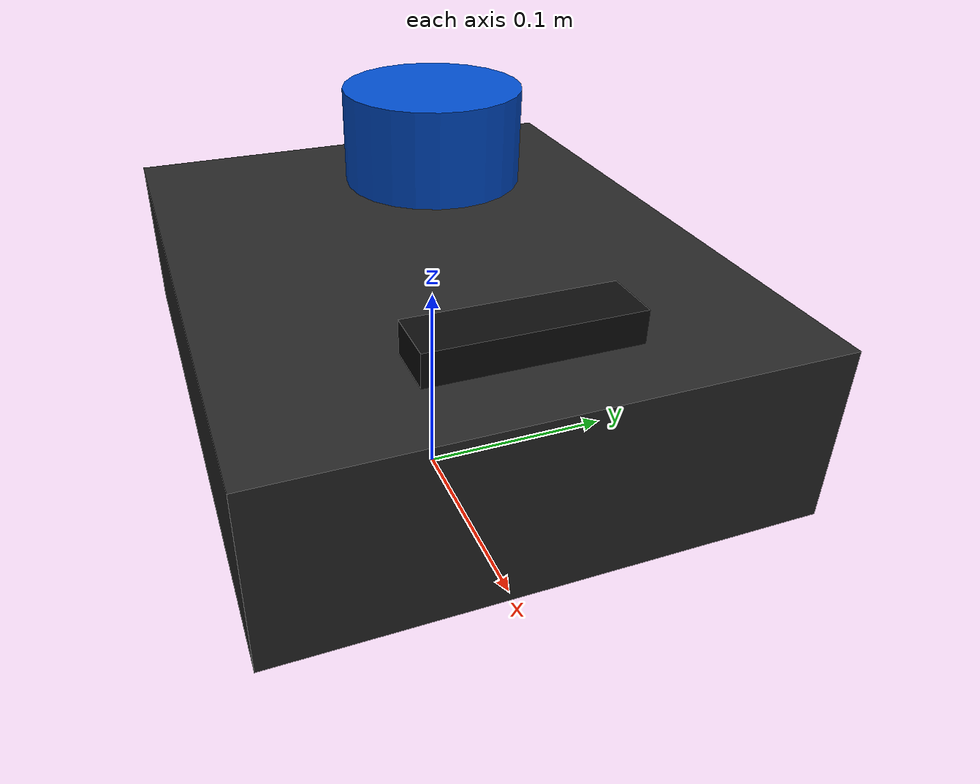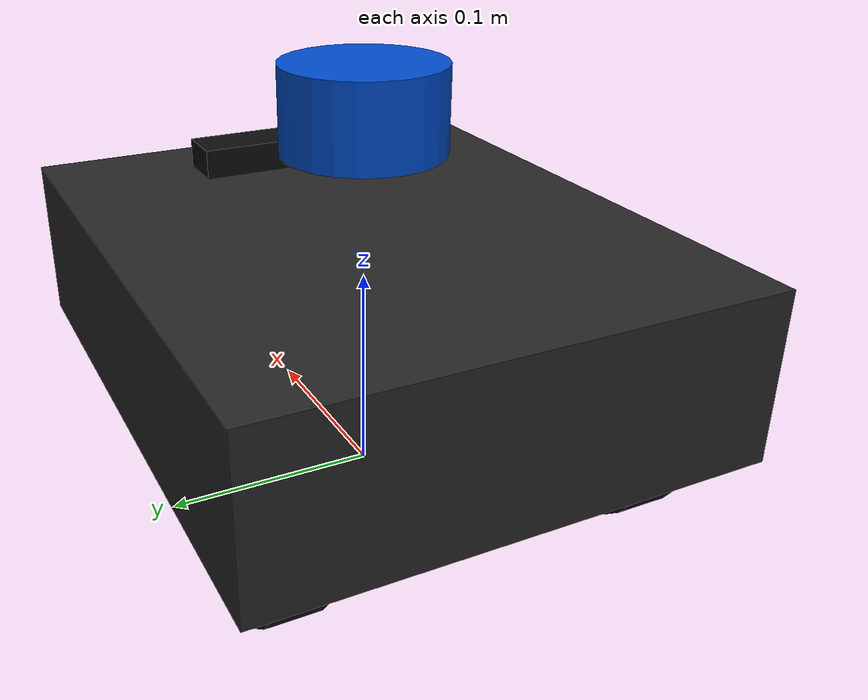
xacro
<?xml version="1.0"?>
<robot name="yahboom_m3pro" xmlns:xacro="http://www.ros.org/wiki/xacro">

  <xacro:arg name="use_sim"    default="false"/>
  <xacro:arg name="robot_name" default="m3pro"/>

  <xacro:property name="sim" value="$(arg use_sim)"/>

  <!-- ── Materials ─────────────────────────────────────────────────────────── -->
  <material name="dark_grey"><color rgba="0.15 0.15 0.15 1.0"/></material>
  <material name="tyre_black"><color rgba="0.05 0.05 0.05 1.0"/></material>
  <material name="lidar_blue"><color rgba="0.0 0.3 0.8 1.0"/></material>
  <material name="camera_black"><color rgba="0.05 0.05 0.05 1.0"/></material>
  <material name="white"><color rgba="0.9 0.9 0.9 1.0"/></material>

  <!-- ── Ground projection ─────────────────────────────────────────────────── -->
  <link name="base_footprint"/>
  <joint name="base_footprint_joint" type="fixed">
    <parent link="base_footprint"/>
    <child  link="base_link"/>
    <origin xyz="0 0 0.048" rpy="0 0 0"/>
  </joint>

  <!-- ── Chassis ───────────────────────────────────────────────────────────── -->
  <link name="base_link">
    <visual>
      <origin xyz="0 0 0.040" rpy="0 0 0"/>
      <geometry><box size="0.290 0.235 0.080"/></geometry>
      <material name="dark_grey"/>
    </visual>
    <collision>
      <origin xyz="0 0 0.040" rpy="0 0 0"/>
      <geometry><box size="0.290 0.235 0.080"/></geometry>
    </collision>
    <inertial>
      <!-- body_mass = 2.400 − 4×0.150 = 1.800 kg; box inertia -->
      <origin xyz="0 0 0.040" rpy="0 0 0"/>
      <mass value="1.800"/>
      <inertia ixx="0.009" ixy="0.0" ixz="0.0"
               iyy="0.014" iyz="0.0"
               izz="0.021"/>
    </inertial>
  </link>

  <!-- ── Wheel macro ───────────────────────────────────────────────────────── -->
  <xacro:macro name="mecanum_wheel" params="name x y">
    <link name="${name}_wheel">
      <visual>
        <origin xyz="0 0 0" rpy="-1.5708 0 0"/>
        <geometry><cylinder length="0.025" radius="0.048"/></geometry>
        <material name="tyre_black"/>
      </visual>
      <collision>
        <origin xyz="0 0 0" rpy="-1.5708 0 0"/>
        <geometry><cylinder length="0.025" radius="0.048"/></geometry>
      </collision>
      <inertial>
        <mass value="0.150"/>
        <!-- cylinder spin axis=Y: iyy=0.5mr²; ixx=izz=m(3r²+h²)/12 -->
        <inertia ixx="0.000094" ixy="0.0" ixz="0.0"
                 iyy="0.000173" iyz="0.0"
                 izz="0.000094"/>
      </inertial>
    </link>
    <joint name="${name}_wheel_joint" type="continuous">
      <parent link="base_link"/>
      <child  link="${name}_wheel"/>
      <origin xyz="${x} ${y} 0" rpy="0 0 0"/>
      <axis xyz="0 1 0"/>
      <dynamics damping="0.1" friction="0.05"/>
    </joint>
    <gazebo reference="${name}_wheel">
      <mu1>1.0</mu1>
      <mu2>1.0</mu2>
      <kp>1e6</kp>
      <kd>100.0</kd>
      <material>Gazebo/DarkGrey</material>
    </gazebo>
  </xacro:macro>

  <xacro:mecanum_wheel name="fl" x=" 0.0775" y=" 0.085"/>
  <xacro:mecanum_wheel name="fr" x=" 0.0775" y="-0.085"/>
  <xacro:mecanum_wheel name="rl" x="-0.0775" y=" 0.085"/>
  <xacro:mecanum_wheel name="rr" x="-0.0775" y="-0.085"/>

  <!-- ── LiDAR link ─────────────────────────────────────────────────────────── -->
  <link name="lidar_link">
    <visual>
      <origin xyz="0 0 0.020" rpy="0 0 0"/>
      <geometry><cylinder length="0.040" radius="0.038"/></geometry>
      <material name="lidar_blue"/>
    </visual>
    <collision>
      <origin xyz="0 0 0.020" rpy="0 0 0"/>
      <geometry><cylinder length="0.040" radius="0.038"/></geometry>
    </collision>
    <inertial>
      <mass value="0.170"/>
      <inertia ixx="0.000120" ixy="0.0" ixz="0.0"
               iyy="0.000120" iyz="0.0"
               izz="0.000180"/>
    </inertial>
  </link>
  <joint name="lidar_joint" type="fixed">
    <parent link="base_link"/>
    <child  link="lidar_link"/>
    <!-- 0.160 m from ground − 0.048 m wheel radius -->
    <origin xyz="0.0 0.0 0.112" rpy="0 0 0"/>
  </joint>

  <!-- ── Camera link ───────────────────────────────────────────────────────── -->
  <link name="camera_link">
    <visual>
      <geometry><box size="0.025 0.090 0.025"/></geometry>
      <material name="camera_black"/>
    </visual>
    <collision>
      <geometry><box size="0.025 0.090 0.025"/></geometry>
    </collision>
    <inertial>
      <mass value="0.050"/>
      <inertia ixx="0.0000100" ixy="0.0" ixz="0.0"
               iyy="0.0000100" iyz="0.0"
               izz="0.0000100"/>
    </inertial>
  </link>
  <joint name="camera_joint" type="fixed">
    <parent link="base_link"/>
    <child  link="camera_link"/>
    <origin xyz="0.100 0.0 0.082" rpy="0 0 0"/>
  </joint>

  <!-- ROS optical frame -->
  <link name="camera_optical_link"/>
  <joint name="camera_optical_joint" type="fixed">
    <parent link="camera_link"/>
    <child  link="camera_optical_link"/>
    <origin xyz="0 0 0" rpy="-1.5708 0 -1.5708"/>
  </joint>

  <!-- ── IMU ───────────────────────────────────────────────────────────────── -->
  <link name="imu_link">
    <inertial>
      <mass value="0.001"/>
      <inertia ixx="0.0000001" ixy="0.0" ixz="0.0"
               iyy="0.0000001" iyz="0.0"
               izz="0.0000001"/>
    </inertial>
  </link>
  <joint name="imu_joint" type="fixed">
    <parent link="base_link"/>
    <child  link="imu_link"/>
    <origin xyz="0.0 0.0 0.040" rpy="0 0 0"/>
  </joint>

  <!-- ── Real hardware interface (only when not in sim) ────────────────────── -->
  <xacro:unless value="${sim}">
    <ros2_control name="yahboom_m3pro_hardware" type="system">
      <hardware>
        <plugin>yahboom_hardware/YahboomM3ProHardware</plugin>
        <param name="serial_port">/dev/yahboom</param>
        <param name="baud_rate">115200</param>
        <param name="timeout_ms">100</param>
      </hardware>
      <joint name="fl_wheel_joint">
        <command_interface name="velocity"/>
        <state_interface name="position"/>
        <state_interface name="velocity"/>
      </joint>
      <joint name="fr_wheel_joint">
        <command_interface name="velocity"/>
        <state_interface name="position"/>
        <state_interface name="velocity"/>
      </joint>
      <joint name="rl_wheel_joint">
        <command_interface name="velocity"/>
        <state_interface name="position"/>
        <state_interface name="velocity"/>
      </joint>
      <joint name="rr_wheel_joint">
        <command_interface name="velocity"/>
        <state_interface name="position"/>
        <state_interface name="velocity"/>
      </joint>
    </ros2_control>
  </xacro:unless>

  <!-- ── Gazebo Harmonic plugins (sim only) ────────────────────────────────── -->
  <xacro:if value="${sim}">

    <!-- Differential drive (mecanum treated as skid-steer for demo) -->
    <gazebo>
      <plugin filename="gz-sim-diff-drive-system"
              name="gz::sim::systems::DiffDrive">
        <!-- left wheels -->
        <left_joint>fl_wheel_joint</left_joint>
        <left_joint>rl_wheel_joint</left_joint>
        <!-- right wheels -->
        <right_joint>fr_wheel_joint</right_joint>
        <right_joint>rr_wheel_joint</right_joint>
        <!-- M3Pro kinematics: track=0.170m, radius=0.048m -->
        <wheel_separation>0.170</wheel_separation>
        <wheel_radius>0.048</wheel_radius>
        <max_linear_acceleration>1.0</max_linear_acceleration>
        <max_angular_acceleration>2.0</max_angular_acceleration>
        <max_velocity>0.5</max_velocity>
        <topic>/cmd_vel</topic>
        <odom_topic>/odom</odom_topic>
        <tf_topic>/tf</tf_topic>
        <frame_id>odom</frame_id>
        <child_frame_id>base_footprint</child_frame_id>
        <odom_publish_frequency>30</odom_publish_frequency>
      </plugin>
    </gazebo>

    <!-- Joint state publisher -->
    <gazebo>
      <plugin filename="gz-sim-joint-state-publisher-system"
              name="gz::sim::systems::JointStatePublisher">
        <topic>/joint_states</topic>
        <joint_name>fl_wheel_joint</joint_name>
        <joint_name>fr_wheel_joint</joint_name>
        <joint_name>rl_wheel_joint</joint_name>
        <joint_name>rr_wheel_joint</joint_name>
      </plugin>
    </gazebo>

    <!-- RGB camera (GNM/ViNT/NoMaD input) -->
    <gazebo reference="camera_link">
      <sensor type="camera" name="rgb_camera">
        <camera name="rgb_camera">
          <horizontal_fov>1.3962634</horizontal_fov>
          <image>
            <width>640</width>
            <height>480</height>
            <format>R8G8B8</format>
          </image>
          <clip><near>0.05</near><far>100</far></clip>
          <noise>
            <type>gaussian</type>
            <mean>0.0</mean>
            <stddev>0.007</stddev>
          </noise>
        </camera>
        <always_on>true</always_on>
        <update_rate>30</update_rate>
        <visualize>false</visualize>
        <topic>/camera/image_raw</topic>
      </sensor>
    </gazebo>

    <!-- 2D LiDAR (RPLidar A1M8: 360°, 12m range) -->
    <gazebo reference="lidar_link">
      <sensor type="lidar" name="lidar">
        <lidar>
          <scan>
            <horizontal>
              <samples>360</samples>
              <resolution>1</resolution>
              <min_angle>-3.14159265</min_angle>
              <max_angle>3.14159265</max_angle>
            </horizontal>
          </scan>
          <range>
            <min>0.15</min>
            <max>12.0</max>
            <resolution>0.01</resolution>
          </range>
          <noise>
            <type>gaussian</type>
            <mean>0.0</mean>
            <stddev>0.01</stddev>
          </noise>
        </lidar>
        <always_on>true</always_on>
        <update_rate>10</update_rate>
        <topic>/scan</topic>
        <visualize>false</visualize>
      </sensor>
    </gazebo>

    <!-- IMU -->
    <gazebo reference="imu_link">
      <sensor type="imu" name="imu_sensor">
        <always_on>true</always_on>
        <update_rate>100</update_rate>
        <topic>/imu/data</topic>
        <imu>
          <angular_velocity>
            <x><noise type="gaussian"><mean>0.0</mean><stddev>0.002</stddev></noise></x>
            <y><noise type="gaussian"><mean>0.0</mean><stddev>0.002</stddev></noise></y>
            <z><noise type="gaussian"><mean>0.0</mean><stddev>0.002</stddev></noise></z>
          </angular_velocity>
          <linear_acceleration>
            <x><noise type="gaussian"><mean>0.0</mean><stddev>0.017</stddev></noise></x>
            <y><noise type="gaussian"><mean>0.0</mean><stddev>0.017</stddev></noise></y>
            <z><noise type="gaussian"><mean>0.0</mean><stddev>0.017</stddev></noise></z>
          </linear_acceleration>
        </imu>
      </sensor>
    </gazebo>

    <!-- Chassis material -->
    <gazebo reference="base_link">
      <material>Gazebo/DarkGrey</material>
    </gazebo>
    <gazebo reference="lidar_link">
      <material>Gazebo/Blue</material>
    </gazebo>
    <gazebo reference="camera_link">
      <material>Gazebo/Black</material>
    </gazebo>

  </xacro:if>

</robot>
